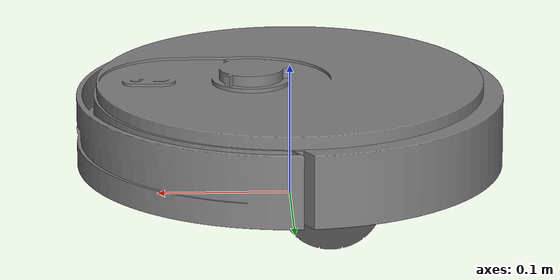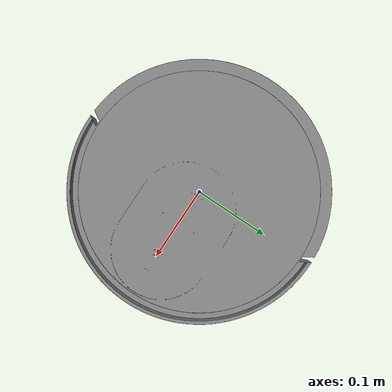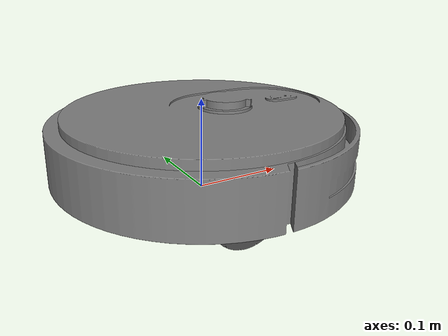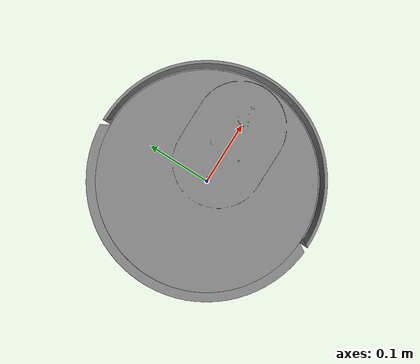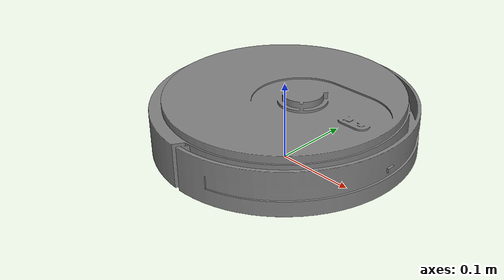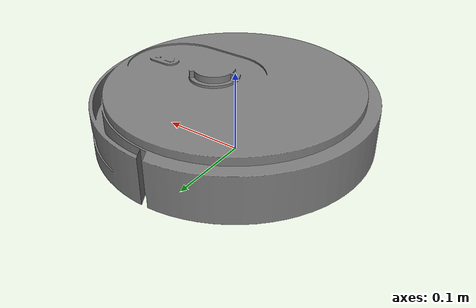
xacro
<?xml version="1.0" ?>
<!-- Generated using onshape-to-robot -->
<!-- Onshape document_id: 6ec665232e6fc828980877e8 -->
<robot name="robot_vacuum" xmlns:xacro="http://www.ros.org/wiki/xacro">

  <link name="base_footprint"/>

  <joint name="base_joint" type="fixed">
    <parent link="base_footprint" />
    <child link="base_link" />
    <origin xyz="0 0 0.025" rpy="0 0 0" />
  </joint>

  <!-- Link base_link -->
  <link name="base_link">
    <inertial>
      <origin xyz="-0.00378578 0 0.0270897" rpy="0 0 0"/>
      <mass value="4.00461"/>
      <inertia ixx="0.0244265" ixy="-0" ixz="0.000164923" iyy="0.0275036" iyz="-0" izz="0.0499105"/>
    </inertial>
    <!-- Part base_link -->
    <visual>
      <origin xyz="0 0 0" rpy="-0 -0 -1.5708"/>
      <geometry>
        <mesh filename="package://robot_description/assets/base_link.stl"/>
      </geometry>
      <material name="base_link_material">
        <color rgba="0.501961 0.501961 0.501961 1"/>
      </material>
    </visual>
    <collision>
      <origin xyz="0 0 0" rpy="-0 -0 -1.5708"/>
      <geometry>
        <mesh filename="package://robot_description/assets/base_link.stl"/>
      </geometry>
    </collision>
  </link>

  <!-- Link roof -->
  <link name="roof_link">
    <inertial>
      <origin xyz="-2e-12 -0.00178866 -0.00507735" rpy="0 0 0"/>
      <mass value="0.683273"/>
      <inertia ixx="0.00350653" ixy="0" ixz="-0" iyy="0.00362483" iyz="-1.91394e-06" izz="0.00711728"/>
    </inertial>
    <!-- Part roof -->
    <visual>
      <origin xyz="0 0 0" rpy="-3.14159 -0 0"/>
      <geometry>
        <mesh filename="package://robot_description/assets/roof.stl"/>
      </geometry>
      <material name="roof_material">
        <color rgba="0.501961 0.501961 0.501961 1"/>
      </material>
    </visual>
    <collision>
      <origin xyz="0 0 0" rpy="-3.14159 -0 0"/>
      <geometry>
        <mesh filename="package://robot_description/assets/roof.stl"/>
      </geometry>
    </collision>
  </link>

   <!-- Joint from base_link to roof -->
  <joint name="roof_joint" type="fixed">
    <origin xyz="-0 -0 0.0545" rpy="-3.14159 0 1.5708"/>
    <parent link="base_link"/>
    <child link="roof_link"/>
  </joint>

  <!-- Link wheel_right -->
  <link name="right_wheel_link">
    <inertial>
      <origin xyz="-0 -0 -0.0175" rpy="0 0 0"/>
      <mass value="0.161369"/>
      <inertia ixx="7.32673e-05" ixy="0" ixz="-0" iyy="7.32673e-05" iyz="-0" izz="0.000113589"/>
    </inertial>
    <!-- Part wheel_right -->
    <visual>
      <origin xyz="0 -0 0" rpy="1.5708 -0 0"/>
      <geometry>
        <mesh filename="package://robot_description/assets/wheel.stl"/>
      </geometry>
      <material name="wheel_material">
        <color rgba="0.301961 0.301961 0.301961 1"/>
      </material>
    </visual>
    <collision>
      <origin xyz="0 -0 0" rpy="1.5708 -0 0"/>
      <geometry>
        <mesh filename="package://robot_description/assets/wheel.stl"/>
      </geometry>
    </collision>
  </link>

  <!-- Joint from base_link to wheel_right -->
  <joint name="right_wheel_joint" type="continuous">
    <origin xyz="-0.025 -0.093 0.0115" rpy="-1.5708 0 -0"/>
    <parent link="base_link"/>
    <child link="right_wheel_link"/>
    <axis xyz="0 0 1"/>
    <limit effort="5.0" velocity="5.0"/>
    <dynamics damping="0.1" friction="0.1"/>
  </joint>

  <!-- Link wheel_left -->
  <link name="left_wheel_link">
    <inertial>
      <origin xyz="-0 -0 0.0175" rpy="0 0 0"/>
      <mass value="0.161369"/>
      <inertia ixx="7.32673e-05" ixy="-0" ixz="-0" iyy="7.32673e-05" iyz="0" izz="0.000113589"/>
    </inertial>
    <!-- Part wheel_left -->
    <visual>
      <origin xyz="0 0 0.035" rpy="1.5708 -0 -0"/>
      <geometry>
        <mesh filename="package://robot_description/assets/wheel.stl"/>
      </geometry>
      <material name="wheel_2_material">
        <color rgba="0.301961 0.301961 0.301961 1"/>
      </material>
    </visual>
    <collision>
      <origin xyz="0 0 0.035" rpy="1.5708 -0 -0"/>
      <geometry>
        <mesh filename="package://robot_description/assets/wheel.stl"/>
      </geometry>
    </collision>
  </link>

  <!-- Joint from base_link to wheel_left -->
  <joint name="left_wheel_joint" type="continuous">
    <origin xyz="-0.025 0.093 0.0115" rpy="-1.5708 0 -0"/>
    <parent link="base_link"/>
    <child link="left_wheel_link"/>
    <axis xyz="0 0 1"/>
    <limit effort="5.0" velocity="5.0"/>
    <dynamics damping="0.1" friction="0.1"/>
  </joint>

  <!-- Link caster_wheel -->
  <link name="caster_wheel_link">
    <inertial>
      <origin xyz="0 -0 -0" rpy="0 0 0"/>
      <mass value="0.0688532"/>
      <inertia ixx="1.72133e-05" ixy="-0" ixz="-0" iyy="1.72133e-05" iyz="-0" izz="1.72133e-05"/>
    </inertial>
    <!-- Part caster_wheel -->
    <visual>
      <origin xyz="0 -0 0" rpy="-0 -0 -0"/>
      <geometry>
        <mesh filename="package://robot_description/assets/caster_wheel.stl"/>
      </geometry>
      <material name="caster_wheel_material">
        <color rgba="0.301961 0.301961 0.301961 1"/>
      </material>
    </visual>
    <collision>
      <origin xyz="0 -0 0" rpy="-0 -0 -0"/>
      <geometry>
        <mesh filename="package://robot_description/assets/caster_wheel.stl"/>
      </geometry>
    </collision>
  </link>

  <!-- Joint from base_link to caster_wheel -->
  <joint name="caster_wheel_joint" type="fixed">
    <origin xyz="0.1 -0 -0" rpy="-0 0 -0"/>
    <parent link="base_link"/>
    <child link="caster_wheel_link"/>
  </joint>

</robot>
